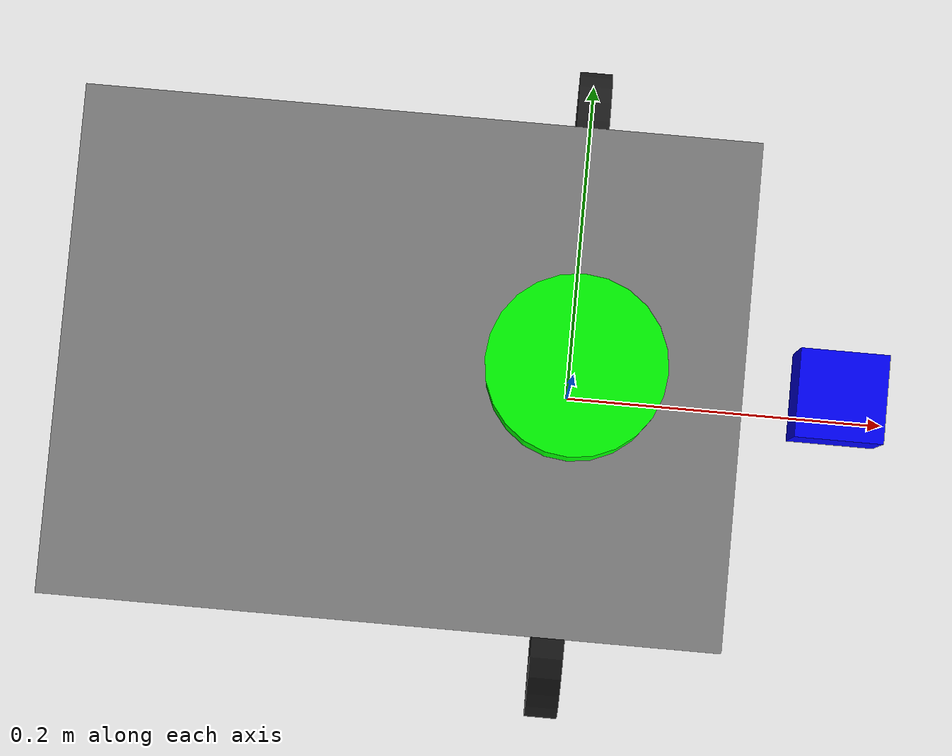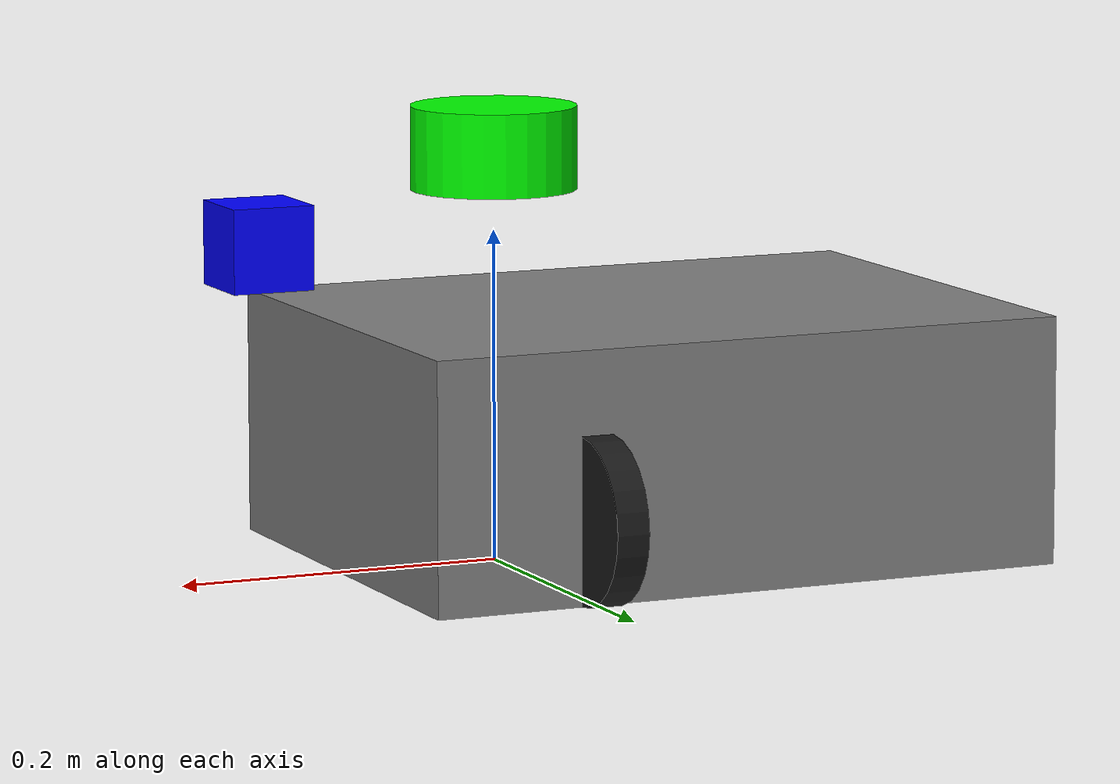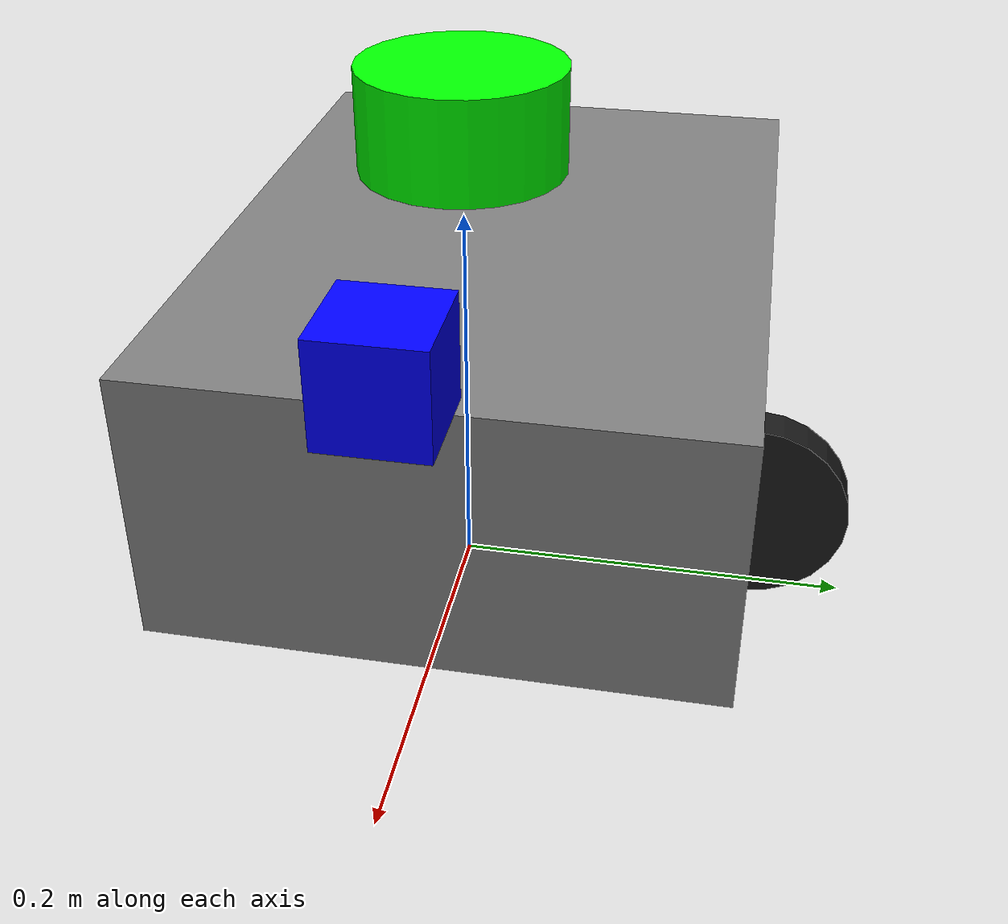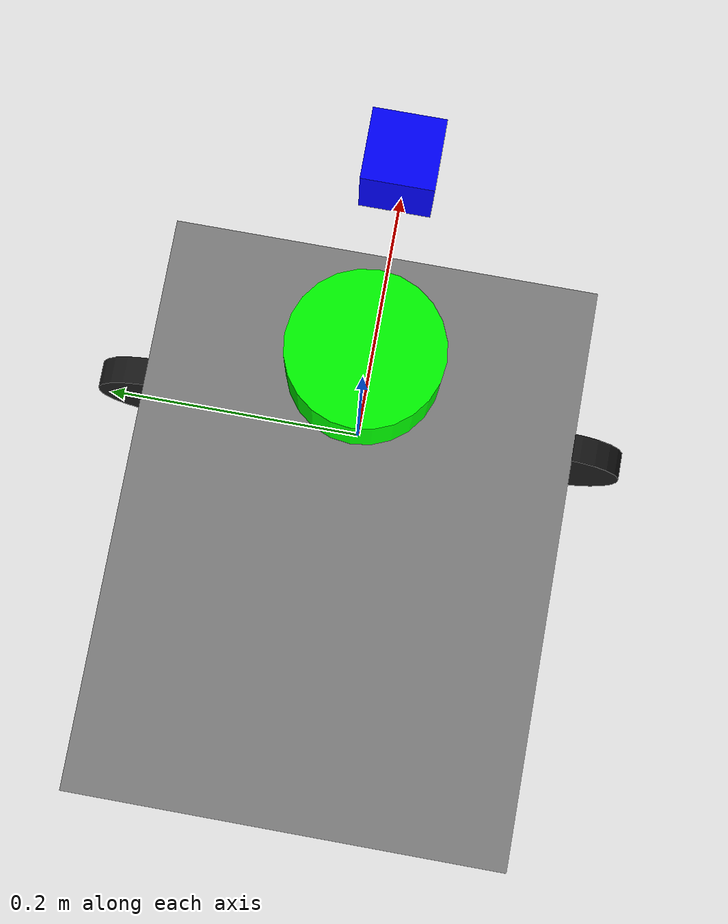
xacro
<?xml version="1.0"?>
<robot name="autonomous_explorer" xmlns:xacro="http://www.ros.org/wiki/xacro">

  <!-- Base link -->
  <link name="base_link">

    </link>

  <!-- CHASSIS LINK -->
  <link name="chassis">
    <visual>
      <geometry>
        <box size="0.4 0.3 0.15"/>
      </geometry>
      <origin xyz="0.0 0 0.075"/>
      <material name="gray">
        <color rgba="0.5 0.5 0.5 1.0"/>
      </material>
    </visual>
    <collision>
      <geometry>
        <box size="0.4 0.3 0.15"/>
      </geometry>
      <origin xyz="0.0 0 0.075"/>
    </collision>
    <inertial>
      <mass value="5.0"/>
      <inertia ixx="0.1" ixy="0.0" ixz="0.0"
               iyy="0.1" iyz="0.0"
               izz="0.1"/>
    </inertial>
  </link>

  <!-- Left Wheel -->
  <link name="left_wheel">
    <visual>
      <geometry>
        <cylinder radius="0.05" length="0.02"/>
      </geometry>

      <material name="black">
        <color rgba="0.1 0.1 0.1 1"/>
      </material>
    </visual>
    <collision>
      <geometry>
        <cylinder radius="0.05" length="0.02"/>
      </geometry>

    </collision>
    <inertial>
      <mass value="0.2"/>
      <inertia ixx="0.001" ixy="0.0" ixz="0.0"
               iyy="0.001" iyz="0.0"
               izz="0.001"/>
    </inertial>
  </link>

  <!-- Right Wheel -->
  <link name="right_wheel">
    <visual>
      <geometry>
        <cylinder radius="0.05" length="0.02"/>
      </geometry>

      <material name="black">
        <color rgba="0.1 0.1 0.1 1"/>
      </material>
    </visual>
    <collision>
      <geometry>
        <cylinder radius="0.05" length="0.02"/>
      </geometry>

    </collision>
    <inertial>
      <mass value="0.2"/>
      <inertia ixx="0.001" ixy="0.0" ixz="0.0"
               iyy="0.001" iyz="0.0"
               izz="0.001"/>
    </inertial>
  </link>

  <!-- Lidar -->
  <link name="lidar_link">
    <visual>
      <geometry>
        <cylinder radius="0.05" length="0.05"/>
      </geometry>
      <material name="green">
        <color rgba="0.0 1.0 0.0 1"/>
      </material>
    </visual>
    <collision>
      <geometry>
        <cylinder radius="0.05" length="0.05"/>
      </geometry>
    </collision>
    <inertial>
      <mass value="0.1"/>
      <inertia ixx="0.001" ixy="0.0" ixz="0.0"
               iyy="0.001" iyz="0.0"
               izz="0.001"/>
    </inertial>
  </link>

  <!-- Camera -->
  <link name="camera_link">
    <visual>
      <geometry>
        <box size="0.05 0.05 0.05"/>
      </geometry>
      <material name="blue">
        <color rgba="0.0 0.0 1.0 1"/>
      </material>
    </visual>
    <collision>
      <geometry>
        <box size="0.05 0.05 0.05"/>
      </geometry>
    </collision>
    <inertial>
      <mass value="0.1"/>
      <inertia ixx="0.001" ixy="0.0" ixz="0.0"
               iyy="0.001" iyz="0.0"
               izz="0.001"/>
    </inertial>
  </link>

  <!-- Joints -->
  <joint name="chassis_joint" type="fixed">
        <parent link="base_link"/>
        <child link="chassis"/>
        <origin xyz="-0.1 0 0"/>
    </joint>

  <joint name="left_wheel_joint" type="continuous">
    <parent link="base_link"/>
    <child link="left_wheel"/>
    <origin xyz="0 0.15 0.05" rpy="0 1.5708 0" />
    <axis xyz="0 0 1"/>
  </joint>

  <joint name="right_wheel_joint" type="continuous">
    <parent link="base_link"/>
    <child link="right_wheel"/>
    <origin xyz="0 -0.15 0.05" rpy="0 1.5708 0" />
        <axis xyz="0 0 1"/>
  </joint>

  <joint name="lidar_joint" type="fixed">
    <parent link="base_link"/>
    <child link="lidar_link"/>
    <origin xyz="0 0 0.25" rpy="0 0 0"/>
  </joint>

  <joint name="camera_joint" type="fixed">
    <parent link="base_link"/>
    <child link="camera_link"/>
    <origin xyz="0.15 0 0.20" rpy="0 0 0"/>
  </joint>

  <!-- Gazebo Plugins -->
  <gazebo>
    <plugin name="diff_drive" filename="libgazebo_ros_diff_drive.so">
      <ros>
        <namespace>/</namespace>
        <remapping>cmd_vel:=cmd_vel</remapping>
        <remapping>odom:=odom</remapping>
      </ros>
      <update_rate>50</update_rate>
      <left_joint>left_wheel_joint</left_joint>
      <right_joint>right_wheel_joint</right_joint>
      <wheel_separation>0.3</wheel_separation>
      <wheel_diameter>0.1</wheel_diameter>
      <odometry_frame>odom</odometry_frame>
    <robot_base_frame>base_link</robot_base_frame>
      <publish_odom>true</publish_odom>
      <publish_wheel_tf>true</publish_wheel_tf>
      <publish_wheel_joint_state>true</publish_wheel_joint_state>
    </plugin>
  </gazebo>

  <gazebo reference="lidar_link">
    <sensor type="ray" name="lidar">
      <update_rate>10</update_rate>
      <ray>
        <scan>
          <horizontal>
            <samples>720</samples>
            <resolution>1</resolution>
            <min_angle>-1.5708</min_angle>
            <max_angle>1.5708</max_angle>
          </horizontal>
        </scan>
        <range>
          <min>0.12</min>
          <max>6.0</max>
          <resolution>0.01</resolution>
        </range>
      </ray>
      <plugin name="gazebo_ros_laser" filename="libgazebo_ros_laser.so">
        <ros>
          <namespace>/</namespace>
          <remapping>scan:=scan</remapping>
        </ros>
        <frameName>lidar_link</frameName>
      </plugin>
    </sensor>
  </gazebo>

  <gazebo reference="camera_link">
    <sensor type="camera" name="camera">
      <update_rate>30</update_rate>
      <camera>
        <horizontal_fov>1.3962634</horizontal_fov>
        <image>
          <width>640</width>
          <height>480</height>
          <format>R8G8B8</format>
        </image>
        <clip>
          <near>0.02</near>
          <far>50</far>
        </clip>
      </camera>
      <plugin name="gazebo_ros_camera" filename="libgazebo_ros_camera.so">
        <ros>
          <namespace>/</namespace>
          <remapping>image_raw:=camera/image_raw</remapping>
          <remapping>camera_info:=camera/camera_info</remapping>
        </ros>
      </plugin>
    </sensor>
  </gazebo>

  <gazebo reference="base_link">
  <material>Gazebo/Grey</material>
</gazebo>

<gazebo reference="left_wheel">
  <material>Gazebo/Black</material>
</gazebo>

<gazebo reference="right_wheel">
  <material>Gazebo/Black</material>
</gazebo>

<gazebo reference="lidar_link">
  <material>Gazebo/Green</material>
</gazebo>

<gazebo reference="camera_link">
  <material>Gazebo/Blue</material>
</gazebo>

</robot>
